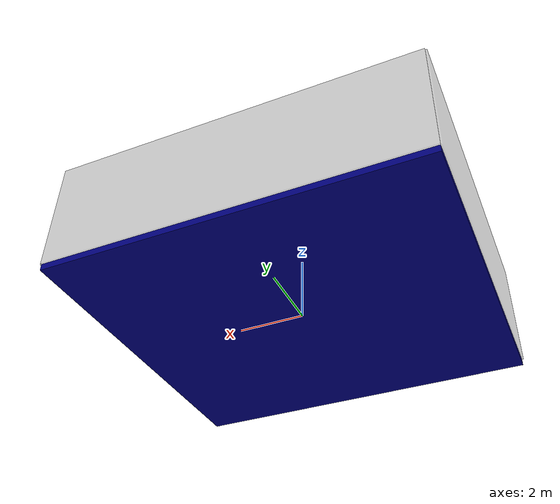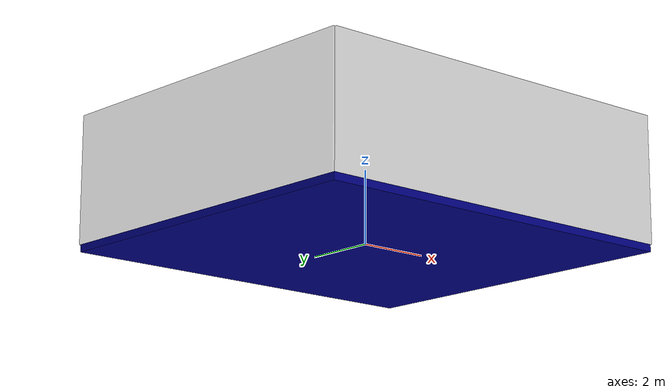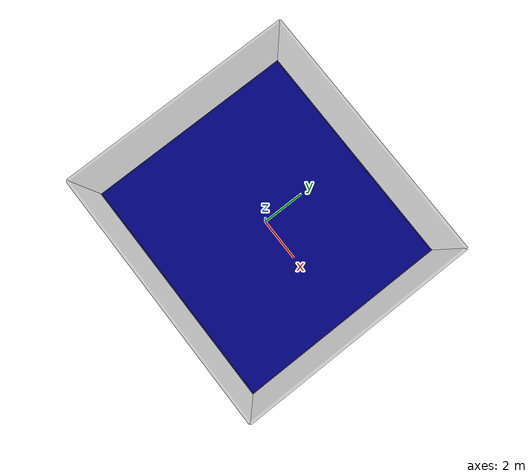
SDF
<sdf version="1.6">
  <model name="wavetank">
    <static>true</static>

    <!-- Tank base -->
    <link name="base">
      <visual name="base_visual">
        <geometry>
          <box>
            <size>11 10 0.2</size> <!-- Length changed to 11 -->
          </box>
        </geometry>
        <material>
          <ambient>0.0 0.0 0.5 0.9</ambient>
          <diffuse>0.0 0.0 0.5 0.9</diffuse>
        </material>
        <pose>0 0 -0.1 0 0 0</pose>
      </visual>
    </link>

    <!-- Tank walls -->
    <link name="walls">
      <!-- Front wall -->
      <visual name="front_wall_visual">
        <geometry>
          <box>
            <size>11 0.1 3.5</size> <!-- Length changed to 11 -->
          </box>
        </geometry>
        <material>
          <ambient>0.5 0.5 0.5 0.4</ambient> <!-- Semi-transparent -->
          <diffuse>0.5 0.5 0.5 0.4</diffuse> <!-- Semi-transparent -->
        </material>
        <pose>0 -5 1.75 0 0 0</pose>
      </visual>

      <!-- Back wall -->
      <visual name="back_wall_visual">
        <geometry>
          <box>
            <size>11 0.1 3.5</size> <!-- Length changed to 11 -->
          </box>
        </geometry>
        <material>
          <ambient>0.5 0.5 0.5 0.4</ambient> <!-- Semi-transparent -->
          <diffuse>0.5 0.5 0.5 0.4</diffuse> <!-- Semi-transparent -->
        </material>
        <pose>0 5 1.75 0 0 0</pose>
      </visual>

      <!-- Left wall -->
      <visual name="left_wall_visual">
        <geometry>
          <box>
            <size>0.1 10 3.5</size>
          </box>
        </geometry>
        <material>
          <ambient>0.5 0.5 0.5 0.4</ambient> <!-- Semi-transparent -->
          <diffuse>0.5 0.5 0.5 0.4</diffuse> <!-- Semi-transparent -->
        </material>
        <pose>-5.5 0 1.75 0 0 0</pose> <!-- Position adjusted for new length -->
      </visual>

      <!-- Right wall -->
      <visual name="right_wall_visual">
        <geometry>
          <box>
            <size>0.1 10 3.5</size>
          </box>
        </geometry>
        <material>
          <ambient>0.5 0.5 0.5 0.4</ambient> <!-- Semi-transparent -->
          <diffuse>0.5 0.5 0.5 0.4</diffuse> <!-- Semi-transparent -->
        </material>
        <pose>5.5 0 1.75 0 0 0</pose> <!-- Position adjusted for new length -->
      </visual>
    </link>

  </model>
</sdf>
